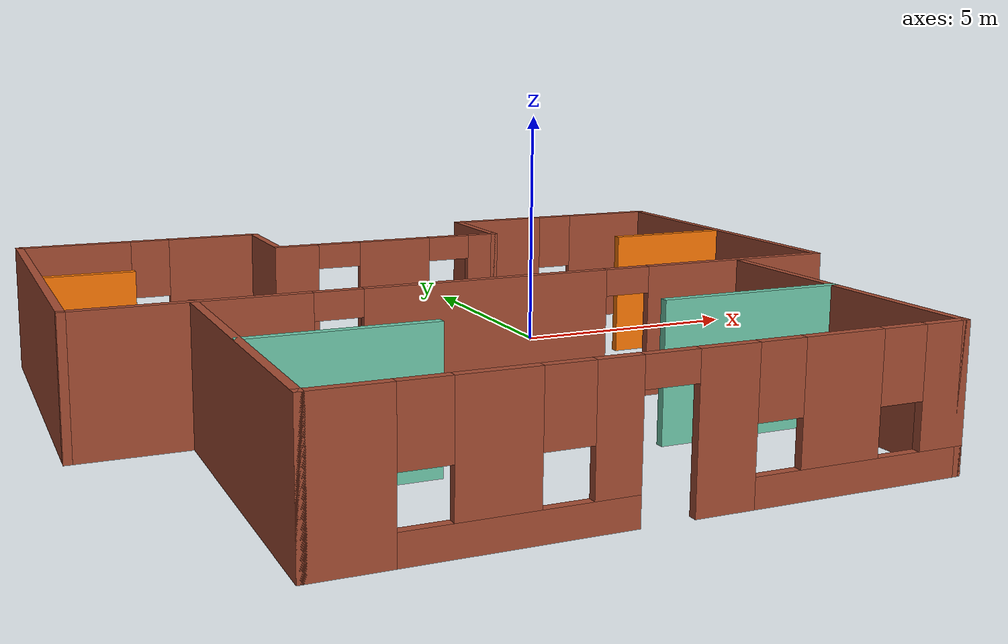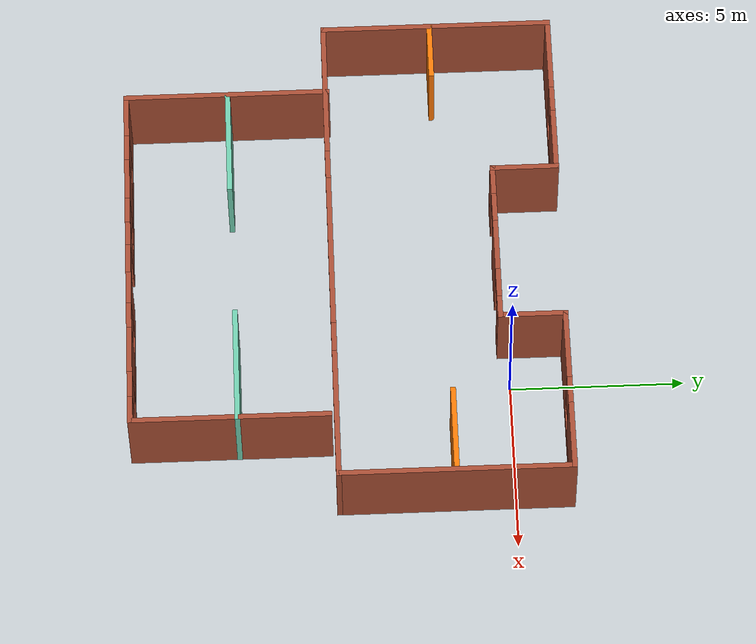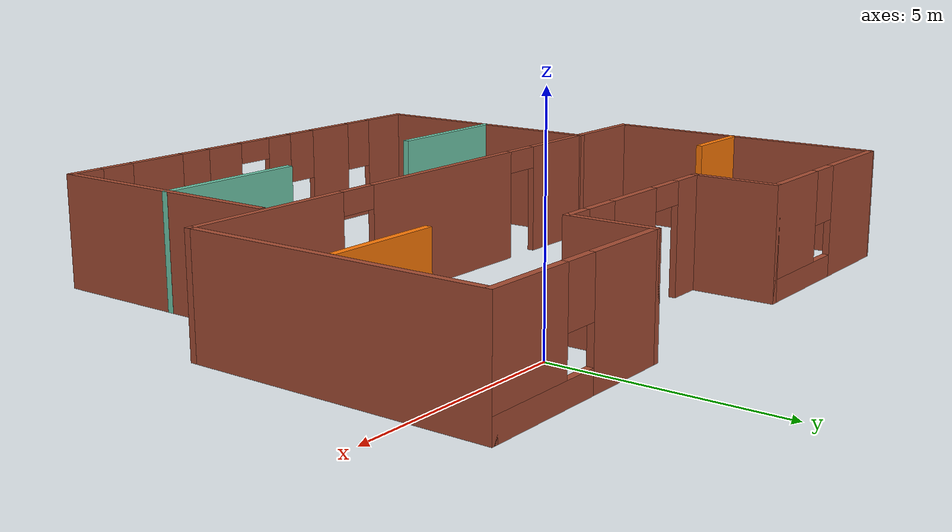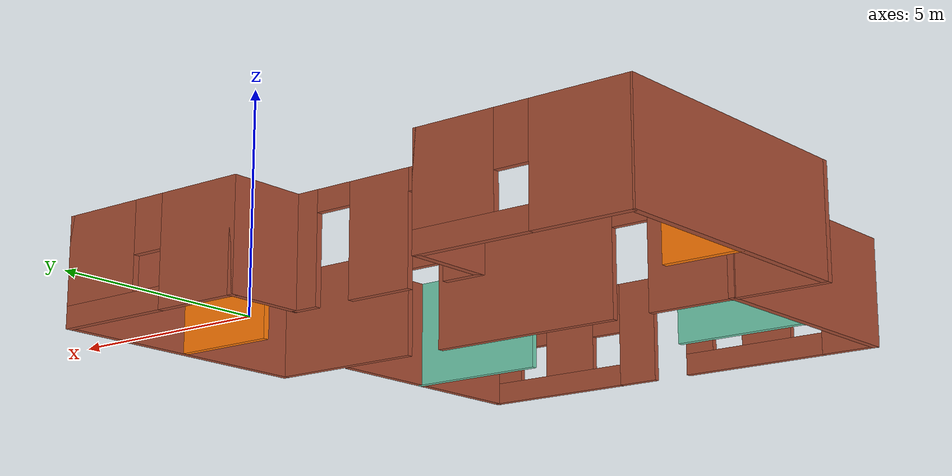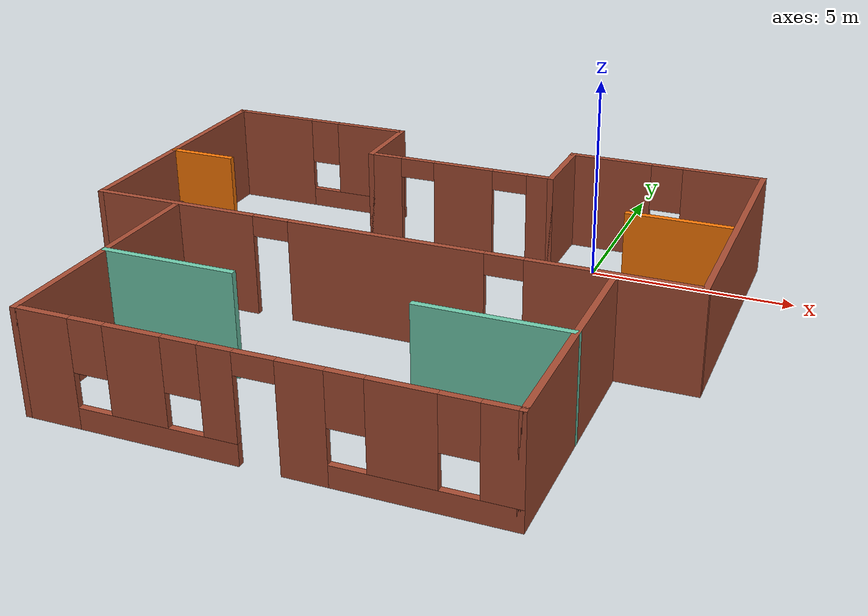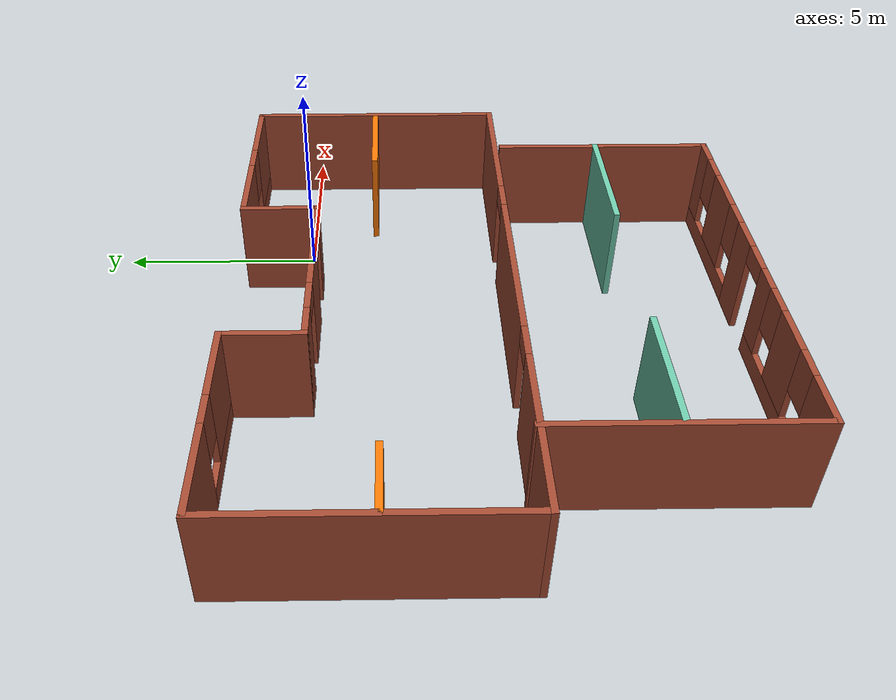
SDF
<?xml version='1.0'?>
<sdf version='1.6'>
  <model name='building'>
    <pose frame=''>-3.54215 -4.60366 0 0 -0 0</pose>
    <link name='Wall_0'>
      <pose frame=''>-4.825 6.20329 0 0 -0 0</pose>
      <visual name='Wall_0_Visual_0'>
        <pose frame=''>-1.37415 0 1.25 0 -0 0</pose>
        <geometry>
          <box>
            <size>2.2517 0.15 2.5</size>
          </box>
        </geometry>
        <material>
          <script>
            <uri>file://media/materials/scripts/gazebo.material</uri>
            <name>Gazebo/Bricks</name>
          </script>
          <ambient>1 1 1 1</ambient>
        </material>
        <meta>
          <layer>0</layer>
        </meta>
      </visual>
      <collision name='Wall_0_Collision_0'>
        <geometry>
          <box>
            <size>2.2517 0.15 2.5</size>
          </box>
        </geometry>
        <pose frame=''>-1.37415 0 1.25 0 -0 0</pose>
      </collision>
      <visual name='Wall_0_Visual_1'>
        <pose frame=''>1.12585 0 0.25 0 -0 0</pose>
        <geometry>
          <box>
            <size>2.7483 0.15 0.5</size>
          </box>
        </geometry>
        <material>
          <script>
            <uri>file://media/materials/scripts/gazebo.material</uri>
            <name>Gazebo/Bricks</name>
          </script>
          <ambient>1 1 1 1</ambient>
        </material>
        <meta>
          <layer>0</layer>
        </meta>
      </visual>
      <collision name='Wall_0_Collision_1'>
        <geometry>
          <box>
            <size>2.7483 0.15 0.5</size>
          </box>
        </geometry>
        <pose frame=''>1.12585 0 0.25 0 -0 0</pose>
      </collision>
      <visual name='Wall_0_Visual_2'>
        <pose frame=''>1.52585 0 1.5 0 -0 0</pose>
        <geometry>
          <box>
            <size>1.9483 0.15 2</size>
          </box>
        </geometry>
        <material>
          <script>
            <uri>file://media/materials/scripts/gazebo.material</uri>
            <name>Gazebo/Bricks</name>
          </script>
          <ambient>1 1 1 1</ambient>
        </material>
        <meta>
          <layer>0</layer>
        </meta>
      </visual>
      <collision name='Wall_0_Collision_2'>
        <geometry>
          <box>
            <size>1.9483 0.15 2</size>
          </box>
        </geometry>
        <pose frame=''>1.52585 0 1.5 0 -0 0</pose>
      </collision>
      <visual name='Wall_0_Visual_3'>
        <pose frame=''>0.151705 0 1.9 0 -0 0</pose>
        <geometry>
          <box>
            <size>0.8 0.15 1.2</size>
          </box>
        </geometry>
        <material>
          <script>
            <uri>file://media/materials/scripts/gazebo.material</uri>
            <name>Gazebo/Bricks</name>
          </script>
          <ambient>1 1 1 1</ambient>
        </material>
        <meta>
          <layer>0</layer>
        </meta>
      </visual>
      <collision name='Wall_0_Collision_3'>
        <geometry>
          <box>
            <size>0.8 0.15 1.2</size>
          </box>
        </geometry>
        <pose frame=''>0.151705 0 1.9 0 -0 0</pose>
      </collision>
    </link>
    <link name='Wall_1'>
      <collision name='Wall_1_Collision'>
        <geometry>
          <box>
            <size>2 0.15 2.5</size>
          </box>
        </geometry>
        <pose frame=''>0 0 1.25 0 -0 0</pose>
      </collision>
      <visual name='Wall_1_Visual'>
        <pose frame=''>0 0 1.25 0 -0 0</pose>
        <geometry>
          <box>
            <size>2 0.15 2.5</size>
          </box>
        </geometry>
        <material>
          <script>
            <uri>file://media/materials/scripts/gazebo.material</uri>
            <name>Gazebo/Bricks</name>
          </script>
          <ambient>1 1 1 1</ambient>
        </material>
        <meta>
          <layer>0</layer>
        </meta>
      </visual>
      <pose frame=''>-2.4 5.27829 0 0 0 -1.5708</pose>
    </link>
    <link name='Wall_10'>
      <pose frame=''>0.115811 -6.20329 0 0 -0 0</pose>
      <visual name='Wall_10_Visual_0'>
        <pose frame=''>-4.69754 0 1.25 0 -0 0</pose>
        <geometry>
          <box>
            <size>1.35492 0.15 2.5</size>
          </box>
        </geometry>
        <material>
          <script>
            <uri>file://media/materials/scripts/gazebo.material</uri>
            <name>Gazebo/Bricks</name>
          </script>
          <ambient>1 1 1 1</ambient>
        </material>
        <meta>
          <layer>0</layer>
        </meta>
      </visual>
      <collision name='Wall_10_Collision_0'>
        <geometry>
          <box>
            <size>1.35492 0.15 2.5</size>
          </box>
        </geometry>
        <pose frame=''>-4.69754 0 1.25 0 -0 0</pose>
      </collision>
      <visual name='Wall_10_Visual_1'>
        <pose frame=''>1.01507 0 1.25 0 -0 0</pose>
        <geometry>
          <box>
            <size>1.00473 0.15 2.5</size>
          </box>
        </geometry>
        <material>
          <script>
            <uri>file://media/materials/scripts/gazebo.material</uri>
            <name>Gazebo/Bricks</name>
          </script>
          <ambient>1 1 1 1</ambient>
        </material>
        <meta>
          <layer>0</layer>
        </meta>
      </visual>
      <collision name='Wall_10_Collision_1'>
        <geometry>
          <box>
            <size>1.00473 0.15 2.5</size>
          </box>
        </geometry>
        <pose frame=''>1.01507 0 1.25 0 -0 0</pose>
      </collision>
      <visual name='Wall_10_Visual_2'>
        <pose frame=''>-2.20369 0 0.25 0 -0 0</pose>
        <geometry>
          <box>
            <size>3.63278 0.15 0.5</size>
          </box>
        </geometry>
        <material>
          <script>
            <uri>file://media/materials/scripts/gazebo.material</uri>
            <name>Gazebo/Bricks</name>
          </script>
          <ambient>1 1 1 1</ambient>
        </material>
        <meta>
          <layer>0</layer>
        </meta>
      </visual>
      <collision name='Wall_10_Collision_2'>
        <geometry>
          <box>
            <size>3.63278 0.15 0.5</size>
          </box>
        </geometry>
        <pose frame=''>-2.20369 0 0.25 0 -0 0</pose>
      </collision>
      <visual name='Wall_10_Visual_3'>
        <pose frame=''>3.44622 0 0.25 0 -0 0</pose>
        <geometry>
          <box>
            <size>3.85757 0.15 0.5</size>
          </box>
        </geometry>
        <material>
          <script>
            <uri>file://media/materials/scripts/gazebo.material</uri>
            <name>Gazebo/Bricks</name>
          </script>
          <ambient>1 1 1 1</ambient>
        </material>
        <meta>
          <layer>0</layer>
        </meta>
      </visual>
      <collision name='Wall_10_Collision_3'>
        <geometry>
          <box>
            <size>3.85757 0.15 0.5</size>
          </box>
        </geometry>
        <pose frame=''>3.44622 0 0.25 0 -0 0</pose>
      </collision>
      <visual name='Wall_10_Visual_4'>
        <pose frame=''>-2.5741 0 1.5 0 -0 0</pose>
        <geometry>
          <box>
            <size>1.29195 0.15 2</size>
          </box>
        </geometry>
        <material>
          <script>
            <uri>file://media/materials/scripts/gazebo.material</uri>
            <name>Gazebo/Bricks</name>
          </script>
          <ambient>1 1 1 1</ambient>
        </material>
        <meta>
          <layer>0</layer>
        </meta>
      </visual>
      <collision name='Wall_10_Collision_4'>
        <geometry>
          <box>
            <size>1.29195 0.15 2</size>
          </box>
        </geometry>
        <pose frame=''>-2.5741 0 1.5 0 -0 0</pose>
      </collision>
      <visual name='Wall_10_Visual_5'>
        <pose frame=''>-0.757715 0 1.5 0 -0 0</pose>
        <geometry>
          <box>
            <size>0.740828 0.15 2</size>
          </box>
        </geometry>
        <material>
          <script>
            <uri>file://media/materials/scripts/gazebo.material</uri>
            <name>Gazebo/Bricks</name>
          </script>
          <ambient>1 1 1 1</ambient>
        </material>
        <meta>
          <layer>0</layer>
        </meta>
      </visual>
      <collision name='Wall_10_Collision_5'>
        <geometry>
          <box>
            <size>0.740828 0.15 2</size>
          </box>
        </geometry>
        <pose frame=''>-0.757715 0 1.5 0 -0 0</pose>
      </collision>
      <visual name='Wall_10_Visual_6'>
        <pose frame=''>-0.757715 0 1.5 0 -0 0</pose>
        <geometry>
          <box>
            <size>0.740828 0.15 2</size>
          </box>
        </geometry>
        <material>
          <script>
            <uri>file://media/materials/scripts/gazebo.material</uri>
            <name>Gazebo/Bricks</name>
          </script>
          <ambient>1 1 1 1</ambient>
        </material>
        <meta>
          <layer>0</layer>
        </meta>
      </visual>
      <collision name='Wall_10_Collision_6'>
        <geometry>
          <box>
            <size>0.740828 0.15 2</size>
          </box>
        </geometry>
        <pose frame=''>-0.757715 0 1.5 0 -0 0</pose>
      </collision>
      <visual name='Wall_10_Visual_7'>
        <pose frame=''>3.02493 0 1.5 0 -0 0</pose>
        <geometry>
          <box>
            <size>1.415 0.15 2</size>
          </box>
        </geometry>
        <material>
          <script>
            <uri>file://media/materials/scripts/gazebo.material</uri>
            <name>Gazebo/Bricks</name>
          </script>
          <ambient>1 1 1 1</ambient>
        </material>
        <meta>
          <layer>0</layer>
        </meta>
      </visual>
      <collision name='Wall_10_Collision_7'>
        <geometry>
          <box>
            <size>1.415 0.15 2</size>
          </box>
        </geometry>
        <pose frame=''>3.02493 0 1.5 0 -0 0</pose>
      </collision>
      <visual name='Wall_10_Visual_8'>
        <pose frame=''>4.95372 0 1.5 0 -0 0</pose>
        <geometry>
          <box>
            <size>0.842564 0.15 2</size>
          </box>
        </geometry>
        <material>
          <script>
            <uri>file://media/materials/scripts/gazebo.material</uri>
            <name>Gazebo/Bricks</name>
          </script>
          <ambient>1 1 1 1</ambient>
        </material>
        <meta>
          <layer>0</layer>
        </meta>
      </visual>
      <collision name='Wall_10_Collision_8'>
        <geometry>
          <box>
            <size>0.842564 0.15 2</size>
          </box>
        </geometry>
        <pose frame=''>4.95372 0 1.5 0 -0 0</pose>
      </collision>
      <visual name='Wall_10_Visual_9'>
        <pose frame=''>-3.62008 0 1.9 0 -0 0</pose>
        <geometry>
          <box>
            <size>0.8 0.15 1.2</size>
          </box>
        </geometry>
        <material>
          <script>
            <uri>file://media/materials/scripts/gazebo.material</uri>
            <name>Gazebo/Bricks</name>
          </script>
          <ambient>1 1 1 1</ambient>
        </material>
        <meta>
          <layer>0</layer>
        </meta>
      </visual>
      <collision name='Wall_10_Collision_9'>
        <geometry>
          <box>
            <size>0.8 0.15 1.2</size>
          </box>
        </geometry>
        <pose frame=''>-3.62008 0 1.9 0 -0 0</pose>
      </collision>
      <visual name='Wall_10_Visual_10'>
        <pose frame=''>1.91743 0 1.9 0 -0 0</pose>
        <geometry>
          <box>
            <size>0.8 0.15 1.2</size>
          </box>
        </geometry>
        <material>
          <script>
            <uri>file://media/materials/scripts/gazebo.material</uri>
            <name>Gazebo/Bricks</name>
          </script>
          <ambient>1 1 1 1</ambient>
        </material>
        <meta>
          <layer>0</layer>
        </meta>
      </visual>
      <collision name='Wall_10_Collision_10'>
        <geometry>
          <box>
            <size>0.8 0.15 1.2</size>
          </box>
        </geometry>
        <pose frame=''>1.91743 0 1.9 0 -0 0</pose>
      </collision>
      <visual name='Wall_10_Visual_11'>
        <pose frame=''>-1.52813 0 1.9 0 -0 0</pose>
        <geometry>
          <box>
            <size>0.8 0.15 1.2</size>
          </box>
        </geometry>
        <material>
          <script>
            <uri>file://media/materials/scripts/gazebo.material</uri>
            <name>Gazebo/Bricks</name>
          </script>
          <ambient>1 1 1 1</ambient>
        </material>
        <meta>
          <layer>0</layer>
        </meta>
      </visual>
      <collision name='Wall_10_Collision_11'>
        <geometry>
          <box>
            <size>0.8 0.15 1.2</size>
          </box>
        </geometry>
        <pose frame=''>-1.52813 0 1.9 0 -0 0</pose>
      </collision>
      <visual name='Wall_10_Visual_12'>
        <pose frame=''>4.13244 0 1.9 0 -0 0</pose>
        <geometry>
          <box>
            <size>0.8 0.15 1.2</size>
          </box>
        </geometry>
        <material>
          <script>
            <uri>file://media/materials/scripts/gazebo.material</uri>
            <name>Gazebo/Bricks</name>
          </script>
          <ambient>1 1 1 1</ambient>
        </material>
        <meta>
          <layer>0</layer>
        </meta>
      </visual>
      <collision name='Wall_10_Collision_12'>
        <geometry>
          <box>
            <size>0.8 0.15 1.2</size>
          </box>
        </geometry>
        <pose frame=''>4.13244 0 1.9 0 -0 0</pose>
      </collision>
      <visual name='Wall_10_Visual_13'>
        <pose frame=''>0.062699 0 2.25 0 -0 0</pose>
        <geometry>
          <box>
            <size>0.9 0.15 0.5</size>
          </box>
        </geometry>
        <material>
          <script>
            <uri>file://media/materials/scripts/gazebo.material</uri>
            <name>Gazebo/Bricks</name>
          </script>
          <ambient>1 1 1 1</ambient>
        </material>
        <meta>
          <layer>0</layer>
        </meta>
      </visual>
      <collision name='Wall_10_Collision_13'>
        <geometry>
          <box>
            <size>0.9 0.15 0.5</size>
          </box>
        </geometry>
        <pose frame=''>0.062699 0 2.25 0 -0 0</pose>
      </collision>
      <visual name='Wall_10_Visual_14'>
        <pose frame=''>0.062699 0 2.25 0 -0 0</pose>
        <geometry>
          <box>
            <size>0.9 0.15 0.5</size>
          </box>
        </geometry>
        <material>
          <script>
            <uri>file://media/materials/scripts/gazebo.material</uri>
            <name>Gazebo/Bricks</name>
          </script>
          <ambient>1 1 1 1</ambient>
        </material>
        <meta>
          <layer>0</layer>
        </meta>
      </visual>
      <collision name='Wall_10_Collision_14'>
        <geometry>
          <box>
            <size>0.9 0.15 0.5</size>
          </box>
        </geometry>
        <pose frame=''>0.062699 0 2.25 0 -0 0</pose>
      </collision>
    </link>
    <link name='Wall_11'>
      <collision name='Wall_11_Collision'>
        <geometry>
          <box>
            <size>5.75 0.15 2.5</size>
          </box>
        </geometry>
        <pose frame=''>0 0 1.25 0 -0 0</pose>
      </collision>
      <visual name='Wall_11_Visual'>
        <pose frame=''>0 0 1.25 0 -0 0</pose>
        <geometry>
          <box>
            <size>5.75 0.15 2.5</size>
          </box>
        </geometry>
        <material>
          <script>
            <uri>file://media/materials/scripts/gazebo.material</uri>
            <name>Gazebo/Bricks</name>
          </script>
          <ambient>1 1 1 1</ambient>
        </material>
        <meta>
          <layer>0</layer>
        </meta>
      </visual>
      <pose frame=''>5.41581 -3.40329 0 0 -0 1.5708</pose>
    </link>
    <link name='Wall_13'>
      <collision name='Wall_13_Collision'>
        <geometry>
          <box>
            <size>3.25 0.15 2.5</size>
          </box>
        </geometry>
        <pose frame=''>0 0 1.25 0 -0 0</pose>
      </collision>
      <visual name='Wall_13_Visual'>
        <pose frame=''>0 0 1.25 0 -0 0</pose>
        <geometry>
          <box>
            <size>3.25 0.15 2.5</size>
          </box>
        </geometry>
        <material>
          <script>
            <uri>file://media/materials/scripts/gazebo.material</uri>
            <name>Gazebo/Grey</name>
          </script>
          <ambient>0.435294 0.796078 0.67451 1</ambient>
        </material>
        <meta>
          <layer>0</layer>
        </meta>
      </visual>
      <pose frame=''>-3.61552 -3.24793 0 0 -0 0</pose>
    </link>
    <link name='Wall_15'>
      <collision name='Wall_15_Collision'>
        <geometry>
          <box>
            <size>3.5 0.15 2.5</size>
          </box>
        </geometry>
        <pose frame=''>0 0 1.25 0 -0 0</pose>
      </collision>
      <visual name='Wall_15_Visual'>
        <pose frame=''>0 0 1.25 0 -0 0</pose>
        <geometry>
          <box>
            <size>3.5 0.15 2.5</size>
          </box>
        </geometry>
        <material>
          <script>
            <uri>file://media/materials/scripts/gazebo.material</uri>
            <name>Gazebo/Grey</name>
          </script>
          <ambient>0.435294 0.796078 0.67451 1</ambient>
        </material>
        <meta>
          <layer>0</layer>
        </meta>
      </visual>
      <pose frame=''>3.74228 -3.18641 0 0 -0 3.14159</pose>
    </link>
    <link name='Wall_17'>
      <collision name='Wall_17_Collision'>
        <geometry>
          <box>
            <size>1.75 0.15 2.5</size>
          </box>
        </geometry>
        <pose frame=''>0 0 1.25 0 -0 0</pose>
      </collision>
      <visual name='Wall_17_Visual'>
        <pose frame=''>0 0 1.25 0 -0 0</pose>
        <geometry>
          <box>
            <size>1.75 0.15 2.5</size>
          </box>
        </geometry>
        <material>
          <script>
            <uri>file://media/materials/scripts/gazebo.material</uri>
            <name>Gazebo/Grey</name>
          </script>
          <ambient>0.996078 0.47451 0.0196078 1</ambient>
        </material>
        <meta>
          <layer>0</layer>
        </meta>
      </visual>
      <pose frame=''>-6.45747 2.72027 0 0 -0 0</pose>
    </link>
    <link name='Wall_19'>
      <collision name='Wall_19_Collision'>
        <geometry>
          <box>
            <size>2.5 0.15 2.5</size>
          </box>
        </geometry>
        <pose frame=''>0 0 1.25 0 -0 0</pose>
      </collision>
      <visual name='Wall_19_Visual'>
        <pose frame=''>0 0 1.25 0 -0 0</pose>
        <geometry>
          <box>
            <size>2.5 0.15 2.5</size>
          </box>
        </geometry>
        <material>
          <script>
            <uri>file://media/materials/scripts/gazebo.material</uri>
            <name>Gazebo/Grey</name>
          </script>
          <ambient>0.996078 0.47451 0.0196078 1</ambient>
        </material>
        <meta>
          <layer>0</layer>
        </meta>
      </visual>
      <pose frame=''>5.96506 2.90485 0 0 -0 3.14159</pose>
    </link>
    <link name='Wall_2'>
      <pose frame=''>0.025 4.35329 0 0 -0 0</pose>
      <visual name='Wall_2_Visual_0'>
        <pose frame=''>-2.03506 0 1.25 0 -0 0</pose>
        <geometry>
          <box>
            <size>0.929883 0.15 2.5</size>
          </box>
        </geometry>
        <material>
          <script>
            <uri>file://media/materials/scripts/gazebo.material</uri>
            <name>Gazebo/Bricks</name>
          </script>
          <ambient>1 1 1 1</ambient>
        </material>
        <meta>
          <layer>0</layer>
        </meta>
      </visual>
      <collision name='Wall_2_Collision_0'>
        <geometry>
          <box>
            <size>0.929883 0.15 2.5</size>
          </box>
        </geometry>
        <pose frame=''>-2.03506 0 1.25 0 -0 0</pose>
      </collision>
      <visual name='Wall_2_Visual_1'>
        <pose frame=''>0.118131 0 1.25 0 -0 0</pose>
        <geometry>
          <box>
            <size>1.5765 0.15 2.5</size>
          </box>
        </geometry>
        <material>
          <script>
            <uri>file://media/materials/scripts/gazebo.material</uri>
            <name>Gazebo/Bricks</name>
          </script>
          <ambient>1 1 1 1</ambient>
        </material>
        <meta>
          <layer>0</layer>
        </meta>
      </visual>
      <collision name='Wall_2_Collision_1'>
        <geometry>
          <box>
            <size>1.5765 0.15 2.5</size>
          </box>
        </geometry>
        <pose frame=''>0.118131 0 1.25 0 -0 0</pose>
      </collision>
      <visual name='Wall_2_Visual_2'>
        <pose frame=''>2.15319 0 1.25 0 -0 0</pose>
        <geometry>
          <box>
            <size>0.69362 0.15 2.5</size>
          </box>
        </geometry>
        <material>
          <script>
            <uri>file://media/materials/scripts/gazebo.material</uri>
            <name>Gazebo/Bricks</name>
          </script>
          <ambient>1 1 1 1</ambient>
        </material>
        <meta>
          <layer>0</layer>
        </meta>
      </visual>
      <collision name='Wall_2_Collision_2'>
        <geometry>
          <box>
            <size>0.69362 0.15 2.5</size>
          </box>
        </geometry>
        <pose frame=''>2.15319 0 1.25 0 -0 0</pose>
      </collision>
      <visual name='Wall_2_Visual_3'>
        <pose frame=''>-1.12012 0 2.25 0 -0 0</pose>
        <geometry>
          <box>
            <size>0.9 0.15 0.5</size>
          </box>
        </geometry>
        <material>
          <script>
            <uri>file://media/materials/scripts/gazebo.material</uri>
            <name>Gazebo/Bricks</name>
          </script>
          <ambient>1 1 1 1</ambient>
        </material>
        <meta>
          <layer>0</layer>
        </meta>
      </visual>
      <collision name='Wall_2_Collision_3'>
        <geometry>
          <box>
            <size>0.9 0.15 0.5</size>
          </box>
        </geometry>
        <pose frame=''>-1.12012 0 2.25 0 -0 0</pose>
      </collision>
      <visual name='Wall_2_Visual_4'>
        <pose frame=''>1.35638 0 2.25 0 -0 0</pose>
        <geometry>
          <box>
            <size>0.9 0.15 0.5</size>
          </box>
        </geometry>
        <material>
          <script>
            <uri>file://media/materials/scripts/gazebo.material</uri>
            <name>Gazebo/Bricks</name>
          </script>
          <ambient>1 1 1 1</ambient>
        </material>
        <meta>
          <layer>0</layer>
        </meta>
      </visual>
      <collision name='Wall_2_Collision_4'>
        <geometry>
          <box>
            <size>0.9 0.15 0.5</size>
          </box>
        </geometry>
        <pose frame=''>1.35638 0 2.25 0 -0 0</pose>
      </collision>
    </link>
    <link name='Wall_3'>
      <collision name='Wall_3_Collision'>
        <geometry>
          <box>
            <size>2 0.15 2.5</size>
          </box>
        </geometry>
        <pose frame=''>0 0 1.25 0 -0 0</pose>
      </collision>
      <visual name='Wall_3_Visual'>
        <pose frame=''>0 0 1.25 0 -0 0</pose>
        <geometry>
          <box>
            <size>2 0.15 2.5</size>
          </box>
        </geometry>
        <material>
          <script>
            <uri>file://media/materials/scripts/gazebo.material</uri>
            <name>Gazebo/Bricks</name>
          </script>
          <ambient>1 1 1 1</ambient>
        </material>
        <meta>
          <layer>0</layer>
        </meta>
      </visual>
      <pose frame=''>2.45 5.27829 0 0 -0 1.5708</pose>
    </link>
    <link name='Wall_4'>
      <pose frame=''>4.875 6.20329 0 0 -0 0</pose>
      <visual name='Wall_4_Visual_0'>
        <pose frame=''>-1.42497 0 1.25 0 -0 0</pose>
        <geometry>
          <box>
            <size>2.15005 0.15 2.5</size>
          </box>
        </geometry>
        <material>
          <script>
            <uri>file://media/materials/scripts/gazebo.material</uri>
            <name>Gazebo/Bricks</name>
          </script>
          <ambient>1 1 1 1</ambient>
        </material>
        <meta>
          <layer>0</layer>
        </meta>
      </visual>
      <collision name='Wall_4_Collision_0'>
        <geometry>
          <box>
            <size>2.15005 0.15 2.5</size>
          </box>
        </geometry>
        <pose frame=''>-1.42497 0 1.25 0 -0 0</pose>
      </collision>
      <visual name='Wall_4_Visual_1'>
        <pose frame=''>1.07503 0 0.25 0 -0 0</pose>
        <geometry>
          <box>
            <size>2.84995 0.15 0.5</size>
          </box>
        </geometry>
        <material>
          <script>
            <uri>file://media/materials/scripts/gazebo.material</uri>
            <name>Gazebo/Bricks</name>
          </script>
          <ambient>1 1 1 1</ambient>
        </material>
        <meta>
          <layer>0</layer>
        </meta>
      </visual>
      <collision name='Wall_4_Collision_1'>
        <geometry>
          <box>
            <size>2.84995 0.15 0.5</size>
          </box>
        </geometry>
        <pose frame=''>1.07503 0 0.25 0 -0 0</pose>
      </collision>
      <visual name='Wall_4_Visual_2'>
        <pose frame=''>1.47503 0 1.5 0 -0 0</pose>
        <geometry>
          <box>
            <size>2.04995 0.15 2</size>
          </box>
        </geometry>
        <material>
          <script>
            <uri>file://media/materials/scripts/gazebo.material</uri>
            <name>Gazebo/Bricks</name>
          </script>
          <ambient>1 1 1 1</ambient>
        </material>
        <meta>
          <layer>0</layer>
        </meta>
      </visual>
      <collision name='Wall_4_Collision_2'>
        <geometry>
          <box>
            <size>2.04995 0.15 2</size>
          </box>
        </geometry>
        <pose frame=''>1.47503 0 1.5 0 -0 0</pose>
      </collision>
      <visual name='Wall_4_Visual_3'>
        <pose frame=''>0.050053 0 1.9 0 -0 0</pose>
        <geometry>
          <box>
            <size>0.8 0.15 1.2</size>
          </box>
        </geometry>
        <material>
          <script>
            <uri>file://media/materials/scripts/gazebo.material</uri>
            <name>Gazebo/Bricks</name>
          </script>
          <ambient>1 1 1 1</ambient>
        </material>
        <meta>
          <layer>0</layer>
        </meta>
      </visual>
      <collision name='Wall_4_Collision_3'>
        <geometry>
          <box>
            <size>0.8 0.15 1.2</size>
          </box>
        </geometry>
        <pose frame=''>0.050053 0 1.9 0 -0 0</pose>
      </collision>
    </link>
    <link name='Wall_5'>
      <collision name='Wall_5_Collision'>
        <geometry>
          <box>
            <size>6.75 0.15 2.5</size>
          </box>
        </geometry>
        <pose frame=''>0 0 1.25 0 -0 0</pose>
      </collision>
      <visual name='Wall_5_Visual'>
        <pose frame=''>0 0 1.25 0 -0 0</pose>
        <geometry>
          <box>
            <size>6.75 0.15 2.5</size>
          </box>
        </geometry>
        <material>
          <script>
            <uri>file://media/materials/scripts/gazebo.material</uri>
            <name>Gazebo/Bricks</name>
          </script>
          <ambient>1 1 1 1</ambient>
        </material>
        <meta>
          <layer>0</layer>
        </meta>
      </visual>
      <pose frame=''>7.3 2.90329 0 0 0 -1.5708</pose>
    </link>
    <link name='Wall_6'>
      <pose frame=''>0 -0.39671 0 0 -0 3.14159</pose>
      <visual name='Wall_6_Visual_0'>
        <pose frame=''>-5.39058 0 1.25 0 -0 0</pose>
        <geometry>
          <box>
            <size>3.96884 0.15 2.5</size>
          </box>
        </geometry>
        <material>
          <script>
            <uri>file://media/materials/scripts/gazebo.material</uri>
            <name>Gazebo/Bricks</name>
          </script>
          <ambient>0.435294 0.796078 0.67451 1</ambient>
        </material>
        <meta>
          <layer>0</layer>
        </meta>
      </visual>
      <collision name='Wall_6_Collision_0'>
        <geometry>
          <box>
            <size>3.96884 0.15 2.5</size>
          </box>
        </geometry>
        <pose frame=''>-5.39058 0 1.25 0 -0 0</pose>
      </collision>
      <visual name='Wall_6_Visual_1'>
        <pose frame=''>-0.125879 0 1.25 0 -0 0</pose>
        <geometry>
          <box>
            <size>4.76056 0.15 2.5</size>
          </box>
        </geometry>
        <material>
          <script>
            <uri>file://media/materials/scripts/gazebo.material</uri>
            <name>Gazebo/Bricks</name>
          </script>
          <ambient>0.435294 0.796078 0.67451 1</ambient>
        </material>
        <meta>
          <layer>0</layer>
        </meta>
      </visual>
      <collision name='Wall_6_Collision_1'>
        <geometry>
          <box>
            <size>4.76056 0.15 2.5</size>
          </box>
        </geometry>
        <pose frame=''>-0.125879 0 1.25 0 -0 0</pose>
      </collision>
      <visual name='Wall_6_Visual_2'>
        <pose frame=''>5.2647 0 1.25 0 -0 0</pose>
        <geometry>
          <box>
            <size>4.2206 0.15 2.5</size>
          </box>
        </geometry>
        <material>
          <script>
            <uri>file://media/materials/scripts/gazebo.material</uri>
            <name>Gazebo/Bricks</name>
          </script>
          <ambient>0.435294 0.796078 0.67451 1</ambient>
        </material>
        <meta>
          <layer>0</layer>
        </meta>
      </visual>
      <collision name='Wall_6_Collision_2'>
        <geometry>
          <box>
            <size>4.2206 0.15 2.5</size>
          </box>
        </geometry>
        <pose frame=''>5.2647 0 1.25 0 -0 0</pose>
      </collision>
      <visual name='Wall_6_Visual_3'>
        <pose frame=''>-2.95616 0 2.25 0 -0 0</pose>
        <geometry>
          <box>
            <size>0.9 0.15 0.5</size>
          </box>
        </geometry>
        <material>
          <script>
            <uri>file://media/materials/scripts/gazebo.material</uri>
            <name>Gazebo/Bricks</name>
          </script>
          <ambient>0.435294 0.796078 0.67451 1</ambient>
        </material>
        <meta>
          <layer>0</layer>
        </meta>
      </visual>
      <collision name='Wall_6_Collision_3'>
        <geometry>
          <box>
            <size>0.9 0.15 0.5</size>
          </box>
        </geometry>
        <pose frame=''>-2.95616 0 2.25 0 -0 0</pose>
      </collision>
      <visual name='Wall_6_Visual_4'>
        <pose frame=''>2.7044 0 2.25 0 -0 0</pose>
        <geometry>
          <box>
            <size>0.9 0.15 0.5</size>
          </box>
        </geometry>
        <material>
          <script>
            <uri>file://media/materials/scripts/gazebo.material</uri>
            <name>Gazebo/Bricks</name>
          </script>
          <ambient>0.435294 0.796078 0.67451 1</ambient>
        </material>
        <meta>
          <layer>0</layer>
        </meta>
      </visual>
      <collision name='Wall_6_Collision_4'>
        <geometry>
          <box>
            <size>0.9 0.15 0.5</size>
          </box>
        </geometry>
        <pose frame=''>2.7044 0 2.25 0 -0 0</pose>
      </collision>
    </link>
    <link name='Wall_7'>
      <collision name='Wall_7_Collision'>
        <geometry>
          <box>
            <size>6.75 0.15 2.5</size>
          </box>
        </geometry>
        <pose frame=''>0 0 1.25 0 -0 0</pose>
      </collision>
      <visual name='Wall_7_Visual'>
        <pose frame=''>0 0 1.25 0 -0 0</pose>
        <geometry>
          <box>
            <size>6.75 0.15 2.5</size>
          </box>
        </geometry>
        <material>
          <script>
            <uri>file://media/materials/scripts/gazebo.material</uri>
            <name>Gazebo/Bricks</name>
          </script>
          <ambient>1 1 1 1</ambient>
        </material>
        <meta>
          <layer>0</layer>
        </meta>
      </visual>
      <pose frame=''>-7.3 2.90329 0 0 -0 1.5708</pose>
    </link>
    <link name='Wall_9'>
      <collision name='Wall_9_Collision'>
        <geometry>
          <box>
            <size>6 0.15 2.5</size>
          </box>
        </geometry>
        <pose frame=''>0 0 1.25 0 -0 0</pose>
      </collision>
      <visual name='Wall_9_Visual'>
        <pose frame=''>0 0 1.25 0 -0 0</pose>
        <geometry>
          <box>
            <size>6 0.15 2.5</size>
          </box>
        </geometry>
        <material>
          <script>
            <uri>file://media/materials/scripts/gazebo.material</uri>
            <name>Gazebo/Bricks</name>
          </script>
          <ambient>1 1 1 1</ambient>
        </material>
        <meta>
          <layer>0</layer>
        </meta>
      </visual>
      <pose frame=''>-5.18419 -3.27829 0 0 0 -1.5708</pose>
    </link>
    <static>1</static>
  </model>
</sdf>
